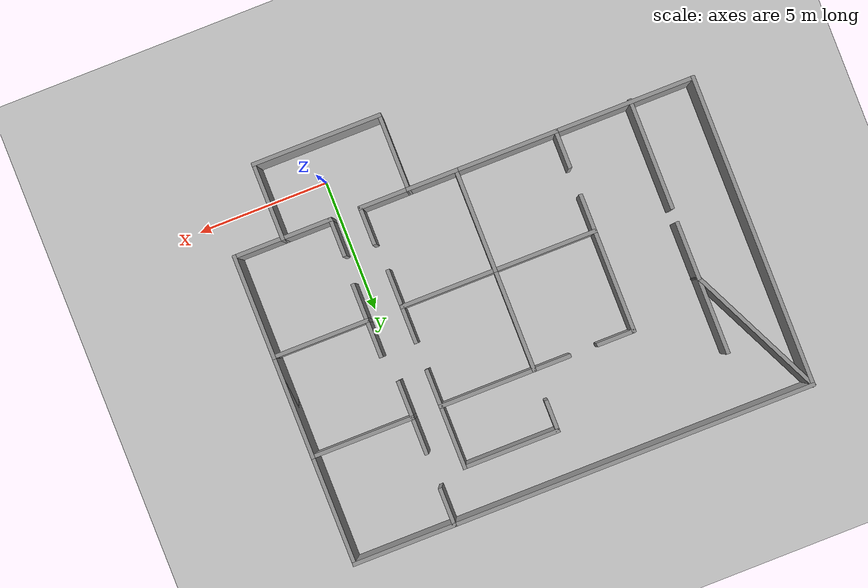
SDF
<sdf version="1.7">
 <world name="default">
  <light name="sun" type="directional">
   <pose>0 0 10 0 -0 0</pose>
   <diffuse>0.8 0.8 0.8 1</diffuse>
   <specular>0.2 0.2 0.2 1</specular>
   <attenuation>
    <range>1000</range>
    <constant>0.9</constant>
    <linear>0.01</linear>
    <quadratic>0.001</quadratic>
   </attenuation>
   <direction>-0.5 0.1 -0.9</direction>
   <spot><inner_angle>0</inner_angle><outer_angle>0</outer_angle><falloff>0</falloff></spot>
  </light>
  <model name="ground_plane">
   <static>1</static>
   <link name="link">
    <collision name="collision">
     <geometry><plane><normal>0 0 1</normal><size>100 100</size></plane></geometry>
     <surface>
      <contact><collide_bitmask>65535</collide_bitmask></contact>
      <friction><ode><mu>100</mu><mu2>50</mu2></ode></friction>
     </surface>
    </collision>
    <visual name="visual">
     <cast_shadows>0</cast_shadows>
     <geometry><plane><normal>0 0 1</normal><size>100 100</size></plane></geometry>
     <material>
      <script><uri>file://media/materials/scripts/gazebo.material</uri><name>Gazebo/Grey</name></script>
     </material>
    </visual>
   </link>
  </model>
  <gravity>0 0 -9.8</gravity>
  <magnetic_field>6e-06 2.3e-05 -4.2e-05</magnetic_field>
  <atmosphere type="adiabatic"/>
  <physics type="ode">
   <max_step_size>0.001</max_step_size>
   <real_time_factor>1</real_time_factor>
   <real_time_update_rate>1000</real_time_update_rate>
  </physics>
  <scene><ambient>0.4 0.4 0.4 1</ambient><background>0.7 0.7 0.7 1</background><shadows>1</shadows></scene>
  <spherical_coordinates>
   <surface_model>EARTH_WGS84</surface_model>
   <latitude_deg>0</latitude_deg>
   <longitude_deg>0</longitude_deg>
   <elevation>0</elevation>
   <heading_deg>0</heading_deg>
  </spherical_coordinates>
  <model name="Building_1">
   <pose>-4.93764 5.97121 0 0 -0 0</pose>
   <link name="Wall_0">
    <collision name="Wall_0_Collision">
     <geometry><box><size>5 0.15 2.5</size></box></geometry>
     <pose>0 0 1.25 0 -0 0</pose>
    </collision>
    <visual name="Wall_0_Visual">
     <pose>0 0 1.25 0 -0 0</pose>
     <geometry><box><size>5 0.15 2.5</size></box></geometry>
     <material>
      <script><uri>file://media/materials/scripts/gazebo.material</uri><name>Gazebo/Grey</name></script>
      <ambient>1 1 1 1</ambient>
     </material>
     <meta><layer>0</layer></meta>
    </visual>
    <pose>4.58754 -7.36254 0 0 -0 0</pose>
   </link>
   <link name="Wall_1">
    <collision name="Wall_1_Collision">
     <geometry><box><size>3 0.15 2.5</size></box></geometry>
     <pose>0 0 1.25 0 -0 0</pose>
    </collision>
    <visual name="Wall_1_Visual">
     <pose>0 0 1.25 0 -0 0</pose>
     <geometry><box><size>3 0.15 2.5</size></box></geometry>
     <material>
      <script><uri>file://media/materials/scripts/gazebo.material</uri><name>Gazebo/Grey</name></script>
      <ambient>1 1 1 1</ambient>
     </material>
     <meta><layer>0</layer></meta>
    </visual>
    <pose>7.01254 -5.93754 0 0 -0 1.5708</pose>
   </link>
   <link name="Wall_10">
    <collision name="Wall_10_Collision">
     <geometry><box><size>4 0.15 2.5</size></box></geometry>
     <pose>0 0 1.25 0 -0 0</pose>
    </collision>
    <visual name="Wall_10_Visual">
     <pose>0 0 1.25 0 -0 0</pose>
     <geometry><box><size>4 0.15 2.5</size></box></geometry>
     <material>
      <script><uri>file://media/materials/scripts/gazebo.material</uri><name>Gazebo/Grey</name></script>
      <ambient>1 1 1 1</ambient>
     </material>
     <meta><layer>0</layer></meta>
    </visual>
    <pose>6.93754 7.33746 0 0 -0 3.14159</pose>
   </link>
   <link name="Wall_11">
    <collision name="Wall_11_Collision">
     <geometry><box><size>1.5 0.15 2.5</size></box></geometry>
     <pose>0 0 1.25 0 -0 0</pose>
    </collision>
    <visual name="Wall_11_Visual">
     <pose>0 0 1.25 0 -0 0</pose>
     <geometry><box><size>1.5 0.15 2.5</size></box></geometry>
     <material>
      <script><uri>file://media/materials/scripts/gazebo.material</uri><name>Gazebo/Grey</name></script>
      <ambient>1 1 1 1</ambient>
     </material>
     <meta><layer>0</layer></meta>
    </visual>
    <pose>5.01254 6.66246 0 0 -0 -1.5708</pose>
   </link>
   <link name="Wall_14">
    <collision name="Wall_14_Collision">
     <geometry><box><size>1.5 0.15 2.5</size></box></geometry>
     <pose>0 0 1.25 0 -0 0</pose>
    </collision>
    <visual name="Wall_14_Visual">
     <pose>0 0 1.25 0 -0 0</pose>
     <geometry><box><size>1.5 0.15 2.5</size></box></geometry>
     <material>
      <script><uri>file://media/materials/scripts/gazebo.material</uri><name>Gazebo/Grey</name></script>
      <ambient>1 1 1 1</ambient>
     </material>
     <meta><layer>0</layer></meta>
    </visual>
    <pose>5.16254 -3.83754 0 0 -0 1.5708</pose>
   </link>
   <link name="Wall_16">
    <collision name="Wall_16_Collision">
     <geometry><box><size>4.02645 0.15 2.5</size></box></geometry>
     <pose>0 0 1.25 0 -0 0</pose>
    </collision>
    <visual name="Wall_16_Visual">
     <pose>0 0 1.25 0 -0 0</pose>
     <geometry><box><size>4.02645 0.15 2.5</size></box></geometry>
     <material>
      <script><uri>file://media/materials/scripts/gazebo.material</uri><name>Gazebo/Grey</name></script>
      <ambient>1 1 1 1</ambient>
     </material>
     <meta><layer>0</layer></meta>
    </visual>
    <pose>8.86254 -2.57431 0 0 -0 1.5708</pose>
   </link>
   <link name="Wall_17">
    <collision name="Wall_17_Collision">
     <geometry><box><size>3.75 0.15 2.5</size></box></geometry>
     <pose>0 0 1.25 0 -0 0</pose>
    </collision>
    <visual name="Wall_17_Visual">
     <pose>0 0 1.25 0 -0 0</pose>
     <geometry><box><size>3.75 0.15 2.5</size></box></geometry>
     <material>
      <script><uri>file://media/materials/scripts/gazebo.material</uri><name>Gazebo/Grey</name></script>
      <ambient>1 1 1 1</ambient>
     </material>
     <meta><layer>0</layer></meta>
    </visual>
    <pose>7.06254 -0.649313 0 0 -0 3.14159</pose>
   </link>
   <link name="Wall_2">
    <collision name="Wall_2_Collision">
     <geometry><box><size>2 0.15 2.5</size></box></geometry>
     <pose>0 0 1.25 0 -0 0</pose>
    </collision>
    <visual name="Wall_2_Visual">
     <pose>0 0 1.25 0 -0 0</pose>
     <geometry><box><size>2 0.15 2.5</size></box></geometry>
     <material>
      <script><uri>file://media/materials/scripts/gazebo.material</uri><name>Gazebo/Grey</name></script>
      <ambient>1 1 1 1</ambient>
     </material>
     <meta><layer>0</layer></meta>
    </visual>
    <pose>6.08754 -4.51254 0 0 -0 3.14159</pose>
   </link>
   <link name="Wall_20">
    <collision name="Wall_20_Collision">
     <geometry><box><size>1.5 0.15 2.5</size></box></geometry>
     <pose>0 0 1.25 0 -0 0</pose>
    </collision>
    <visual name="Wall_20_Visual">
     <pose>0 0 1.25 0 -0 0</pose>
     <geometry><box><size>1.5 0.15 2.5</size></box></geometry>
     <material>
      <script><uri>file://media/materials/scripts/gazebo.material</uri><name>Gazebo/Grey</name></script>
      <ambient>1 1 1 1</ambient>
     </material>
     <meta><layer>0</layer></meta>
    </visual>
    <pose>5.26254 -1.32431 0 0 -0 -1.5708</pose>
   </link>
   <link name="Wall_22">
    <collision name="Wall_22_Collision">
     <geometry><box><size>1.5 0.15 2.5</size></box></geometry>
     <pose>0 0 1.25 0 -0 0</pose>
    </collision>
    <visual name="Wall_22_Visual">
     <pose>0 0 1.25 0 -0 0</pose>
     <geometry><box><size>1.5 0.15 2.5</size></box></geometry>
     <material>
      <script><uri>file://media/materials/scripts/gazebo.material</uri><name>Gazebo/Grey</name></script>
      <ambient>1 1 1 1</ambient>
     </material>
     <meta><layer>0</layer></meta>
    </visual>
    <pose>5.26254 0.025687 0 0 -0 1.5708</pose>
   </link>
   <link name="Wall_24">
    <collision name="Wall_24_Collision">
     <geometry><box><size>4 0.15 2.5</size></box></geometry>
     <pose>0 0 1.25 0 -0 0</pose>
    </collision>
    <visual name="Wall_24_Visual">
     <pose>0 0 1.25 0 -0 0</pose>
     <geometry><box><size>4 0.15 2.5</size></box></geometry>
     <material>
      <script><uri>file://media/materials/scripts/gazebo.material</uri><name>Gazebo/Grey</name></script>
      <ambient>1 1 1 1</ambient>
     </material>
     <meta><layer>0</layer></meta>
    </visual>
    <pose>8.86254 1.27569 0 0 -0 1.5708</pose>
   </link>
   <link name="Wall_25">
    <collision name="Wall_25_Collision">
     <geometry><box><size>4 0.15 2.5</size></box></geometry>
     <pose>0 0 1.25 0 -0 0</pose>
    </collision>
    <visual name="Wall_25_Visual">
     <pose>0 0 1.25 0 -0 0</pose>
     <geometry><box><size>4 0.15 2.5</size></box></geometry>
     <material>
      <script><uri>file://media/materials/scripts/gazebo.material</uri><name>Gazebo/Grey</name></script>
      <ambient>1 1 1 1</ambient>
     </material>
     <meta><layer>0</layer></meta>
    </visual>
    <pose>6.93754 3.20069 0 0 -0 3.14159</pose>
   </link>
   <link name="Wall_26">
    <collision name="Wall_26_Collision">
     <geometry><box><size>1.5 0.15 2.5</size></box></geometry>
     <pose>0 0 1.25 0 -0 0</pose>
    </collision>
    <visual name="Wall_26_Visual">
     <pose>0 0 1.25 0 -0 0</pose>
     <geometry><box><size>1.5 0.15 2.5</size></box></geometry>
     <material>
      <script><uri>file://media/materials/scripts/gazebo.material</uri><name>Gazebo/Grey</name></script>
      <ambient>1 1 1 1</ambient>
     </material>
     <meta><layer>0</layer></meta>
    </visual>
    <pose>5.01254 3.87569 0 0 -0 1.5708</pose>
   </link>
   <link name="Wall_28">
    <collision name="Wall_28_Collision">
     <geometry><box><size>1.5 0.15 2.5</size></box></geometry>
     <pose>0 0 1.25 0 -0 0</pose>
    </collision>
    <visual name="Wall_28_Visual">
     <pose>0 0 1.25 0 -0 0</pose>
     <geometry><box><size>1.5 0.15 2.5</size></box></geometry>
     <material>
      <script><uri>file://media/materials/scripts/gazebo.material</uri><name>Gazebo/Grey</name></script>
      <ambient>1 1 1 1</ambient>
     </material>
     <meta><layer>0</layer></meta>
    </visual>
    <pose>5.01254 2.52569 0 0 -0 -1.5708</pose>
   </link>
   <link name="Wall_30">
    <collision name="Wall_30_Collision">
     <geometry><box><size>2 0.15 2.5</size></box></geometry>
     <pose>0 0 1.25 0 -0 0</pose>
    </collision>
    <visual name="Wall_30_Visual">
     <pose>0 0 1.25 0 -0 0</pose>
     <geometry><box><size>2 0.15 2.5</size></box></geometry>
     <material>
      <script><uri>file://media/materials/scripts/gazebo.material</uri><name>Gazebo/Grey</name></script>
      <ambient>1 1 1 1</ambient>
     </material>
     <meta><layer>0</layer></meta>
    </visual>
    <pose>1.23754 -4.51254 0 0 -0 3.14159</pose>
   </link>
   <link name="Wall_32">
    <collision name="Wall_32_Collision">
     <geometry><box><size>1.5 0.15 2.5</size></box></geometry>
     <pose>0 0 1.25 0 -0 0</pose>
    </collision>
    <visual name="Wall_32_Visual">
     <pose>0 0 1.25 0 -0 0</pose>
     <geometry><box><size>1.5 0.15 2.5</size></box></geometry>
     <material>
      <script><uri>file://media/materials/scripts/gazebo.material</uri><name>Gazebo/Grey</name></script>
      <ambient>1 1 1 1</ambient>
     </material>
     <meta><layer>0</layer></meta>
    </visual>
    <pose>4.01254 -3.83754 0 0 -0 1.5708</pose>
   </link>
   <link name="Wall_34">
    <collision name="Wall_34_Collision">
     <geometry><box><size>4 0.15 2.5</size></box></geometry>
     <pose>0 0 1.25 0 -0 0</pose>
    </collision>
    <visual name="Wall_34_Visual">
     <pose>0 0 1.25 0 -0 0</pose>
     <geometry><box><size>4 0.15 2.5</size></box></geometry>
     <material>
      <script><uri>file://media/materials/scripts/gazebo.material</uri><name>Gazebo/Grey</name></script>
      <ambient>1 1 1 1</ambient>
     </material>
     <meta><layer>0</layer></meta>
    </visual>
    <pose>0.312538 -2.58754 0 0 -0 1.5708</pose>
   </link>
   <link name="Wall_35">
    <collision name="Wall_35_Collision">
     <geometry><box><size>3.75 0.15 2.5</size></box></geometry>
     <pose>0 0 1.25 0 -0 0</pose>
    </collision>
    <visual name="Wall_35_Visual">
     <pose>0 0 1.25 0 -0 0</pose>
     <geometry><box><size>3.75 0.15 2.5</size></box></geometry>
     <material>
      <script><uri>file://media/materials/scripts/gazebo.material</uri><name>Gazebo/Grey</name></script>
      <ambient>1 1 1 1</ambient>
     </material>
     <meta><layer>0</layer></meta>
    </visual>
    <pose>2.11254 -0.662539 0 0 -0 0</pose>
   </link>
   <link name="Wall_36">
    <collision name="Wall_36_Collision">
     <geometry><box><size>1.5 0.15 2.5</size></box></geometry>
     <pose>0 0 1.25 0 -0 0</pose>
    </collision>
    <visual name="Wall_36_Visual">
     <pose>0 0 1.25 0 -0 0</pose>
     <geometry><box><size>1.5 0.15 2.5</size></box></geometry>
     <material>
      <script><uri>file://media/materials/scripts/gazebo.material</uri><name>Gazebo/Grey</name></script>
      <ambient>1 1 1 1</ambient>
     </material>
     <meta><layer>0</layer></meta>
    </visual>
    <pose>3.91254 -1.33754 0 0 -0 -1.5708</pose>
   </link>
   <link name="Wall_38">
    <collision name="Wall_38_Collision">
     <geometry><box><size>4 0.15 2.5</size></box></geometry>
     <pose>0 0 1.25 0 -0 0</pose>
    </collision>
    <visual name="Wall_38_Visual">
     <pose>0 0 1.25 0 -0 0</pose>
     <geometry><box><size>4 0.15 2.5</size></box></geometry>
     <material>
      <script><uri>file://media/materials/scripts/gazebo.material</uri><name>Gazebo/Grey</name></script>
      <ambient>1 1 1 1</ambient>
     </material>
     <meta><layer>0</layer></meta>
    </visual>
    <pose>0.312538 1.26246 0 0 -0 1.5708</pose>
   </link>
   <link name="Wall_39">
    <collision name="Wall_39_Collision">
     <geometry><box><size>3.75 0.15 2.5</size></box></geometry>
     <pose>0 0 1.25 0 -0 0</pose>
    </collision>
    <visual name="Wall_39_Visual">
     <pose>0 0 1.25 0 -0 0</pose>
     <geometry><box><size>3.75 0.15 2.5</size></box></geometry>
     <material>
      <script><uri>file://media/materials/scripts/gazebo.material</uri><name>Gazebo/Grey</name></script>
      <ambient>1 1 1 1</ambient>
     </material>
     <meta><layer>0</layer></meta>
    </visual>
    <pose>2.11254 3.18746 0 0 -0 0</pose>
   </link>
   <link name="Wall_4">
    <collision name="Wall_4_Collision">
     <geometry><box><size>3 0.15 2.5</size></box></geometry>
     <pose>0 0 1.25 0 -0 0</pose>
    </collision>
    <visual name="Wall_4_Visual">
     <pose>0 0 1.25 0 -0 0</pose>
     <geometry><box><size>3 0.15 2.5</size></box></geometry>
     <material>
      <script><uri>file://media/materials/scripts/gazebo.material</uri><name>Gazebo/Grey</name></script>
      <ambient>1 1 1 1</ambient>
     </material>
     <meta><layer>0</layer></meta>
    </visual>
    <pose>2.16254 -5.93754 0 0 -0 1.5708</pose>
   </link>
   <link name="Wall_40">
    <collision name="Wall_40_Collision">
     <geometry><box><size>1.5 0.15 2.5</size></box></geometry>
     <pose>0 0 1.25 0 -0 0</pose>
    </collision>
    <visual name="Wall_40_Visual">
     <pose>0 0 1.25 0 -0 0</pose>
     <geometry><box><size>1.5 0.15 2.5</size></box></geometry>
     <material>
      <script><uri>file://media/materials/scripts/gazebo.material</uri><name>Gazebo/Grey</name></script>
      <ambient>1 1 1 1</ambient>
     </material>
     <meta><layer>0</layer></meta>
    </visual>
    <pose>3.91254 2.51246 0 0 -0 -1.5708</pose>
   </link>
   <link name="Wall_42">
    <collision name="Wall_42_Collision">
     <geometry><box><size>1.5 0.15 2.5</size></box></geometry>
     <pose>0 0 1.25 0 -0 0</pose>
    </collision>
    <visual name="Wall_42_Visual">
     <pose>0 0 1.25 0 -0 0</pose>
     <geometry><box><size>1.5 0.15 2.5</size></box></geometry>
     <material>
      <script><uri>file://media/materials/scripts/gazebo.material</uri><name>Gazebo/Grey</name></script>
      <ambient>1 1 1 1</ambient>
     </material>
     <meta><layer>0</layer></meta>
    </visual>
    <pose>3.91254 0.012462 0 0 -0 1.5708</pose>
   </link>
   <link name="Wall_45">
    <collision name="Wall_45_Collision">
     <geometry><box><size>2.5 0.15 2.5</size></box></geometry>
     <pose>0 0 1.25 0 -0 0</pose>
    </collision>
    <visual name="Wall_45_Visual">
     <pose>0 0 1.25 0 -0 0</pose>
     <geometry><box><size>2.5 0.15 2.5</size></box></geometry>
     <material>
      <script><uri>file://media/materials/scripts/gazebo.material</uri><name>Gazebo/Grey</name></script>
      <ambient>1 1 1 1</ambient>
     </material>
     <meta><layer>0</layer></meta>
    </visual>
    <pose>3.91254 4.36246 0 0 -0 1.5708</pose>
   </link>
   <link name="Wall_46">
    <collision name="Wall_46_Collision">
     <geometry><box><size>3.75 0.15 2.5</size></box></geometry>
     <pose>0 0 1.25 0 -0 0</pose>
    </collision>
    <visual name="Wall_46_Visual">
     <pose>0 0 1.25 0 -0 0</pose>
     <geometry><box><size>3.75 0.15 2.5</size></box></geometry>
     <material>
      <script><uri>file://media/materials/scripts/gazebo.material</uri><name>Gazebo/Grey</name></script>
      <ambient>1 1 1 1</ambient>
     </material>
     <meta><layer>0</layer></meta>
    </visual>
    <pose>2.11254 5.53746 0 0 -0 3.14159</pose>
   </link>
   <link name="Wall_47">
    <collision name="Wall_47_Collision">
     <geometry><box><size>1.25 0.15 2.5</size></box></geometry>
     <pose>0 0 1.25 0 -0 0</pose>
    </collision>
    <visual name="Wall_47_Visual">
     <pose>0 0 1.25 0 -0 0</pose>
     <geometry><box><size>1.25 0.15 2.5</size></box></geometry>
     <material>
      <script><uri>file://media/materials/scripts/gazebo.material</uri><name>Gazebo/Grey</name></script>
      <ambient>1 1 1 1</ambient>
     </material>
     <meta><layer>0</layer></meta>
    </visual>
    <pose>0.312538 4.98746 0 0 -0 -1.5708</pose>
   </link>
   <link name="Wall_49">
    <collision name="Wall_49_Collision">
     <geometry><box><size>4 0.15 2.5</size></box></geometry>
     <pose>0 0 1.25 0 -0 0</pose>
    </collision>
    <visual name="Wall_49_Visual">
     <pose>0 0 1.25 0 -0 0</pose>
     <geometry><box><size>4 0.15 2.5</size></box></geometry>
     <material>
      <script><uri>file://media/materials/scripts/gazebo.material</uri><name>Gazebo/Grey</name></script>
      <ambient>1 1 1 1</ambient>
     </material>
     <meta><layer>0</layer></meta>
    </visual>
    <pose>-1.61246 -0.662539 0 0 -0 3.14159</pose>
   </link>
   <link name="Wall_5">
    <collision name="Wall_5_Collision">
     <geometry><box><size>2 0.15 2.5</size></box></geometry>
     <pose>0 0 1.25 0 -0 0</pose>
    </collision>
    <visual name="Wall_5_Visual">
     <pose>0 0 1.25 0 -0 0</pose>
     <geometry><box><size>2 0.15 2.5</size></box></geometry>
     <material>
      <script><uri>file://media/materials/scripts/gazebo.material</uri><name>Gazebo/Grey</name></script>
      <ambient>1 1 1 1</ambient>
     </material>
     <meta><layer>0</layer></meta>
    </visual>
    <pose>3.08754 -4.51254 0 0 -0 0</pose>
   </link>
   <link name="Wall_51">
    <collision name="Wall_51_Collision">
     <geometry><box><size>4 0.15 2.5</size></box></geometry>
     <pose>0 0 1.25 0 -0 0</pose>
    </collision>
    <visual name="Wall_51_Visual">
     <pose>0 0 1.25 0 -0 0</pose>
     <geometry><box><size>4 0.15 2.5</size></box></geometry>
     <material>
      <script><uri>file://media/materials/scripts/gazebo.material</uri><name>Gazebo/Grey</name></script>
      <ambient>1 1 1 1</ambient>
     </material>
     <meta><layer>0</layer></meta>
    </visual>
    <pose>-1.61246 -4.51254 0 0 -0 3.14159</pose>
   </link>
   <link name="Wall_52">
    <collision name="Wall_52_Collision">
     <geometry><box><size>1.5 0.15 2.5</size></box></geometry>
     <pose>0 0 1.25 0 -0 0</pose>
    </collision>
    <visual name="Wall_52_Visual">
     <pose>0 0 1.25 0 -0 0</pose>
     <geometry><box><size>1.5 0.15 2.5</size></box></geometry>
     <material>
      <script><uri>file://media/materials/scripts/gazebo.material</uri><name>Gazebo/Grey</name></script>
      <ambient>1 1 1 1</ambient>
     </material>
     <meta><layer>0</layer></meta>
    </visual>
    <pose>-3.53746 -3.83754 0 0 -0 1.5708</pose>
   </link>
   <link name="Wall_54">
    <collision name="Wall_54_Collision">
     <geometry><box><size>4 0.15 2.5</size></box></geometry>
     <pose>0 0 1.25 0 -0 0</pose>
    </collision>
    <visual name="Wall_54_Visual">
     <pose>0 0 1.25 0 -0 0</pose>
     <geometry><box><size>4 0.15 2.5</size></box></geometry>
     <material>
      <script><uri>file://media/materials/scripts/gazebo.material</uri><name>Gazebo/Grey</name></script>
      <ambient>1 1 1 1</ambient>
     </material>
     <meta><layer>0</layer></meta>
    </visual>
    <pose>-3.53746 1.26246 0 0 -0 1.5708</pose>
   </link>
   <link name="Wall_56">
    <collision name="Wall_56_Collision">
     <geometry><box><size>1.5 0.15 2.5</size></box></geometry>
     <pose>0 0 1.25 0 -0 0</pose>
    </collision>
    <visual name="Wall_56_Visual">
     <pose>0 0 1.25 0 -0 0</pose>
     <geometry><box><size>1.5 0.15 2.5</size></box></geometry>
     <material>
      <script><uri>file://media/materials/scripts/gazebo.material</uri><name>Gazebo/Grey</name></script>
      <ambient>1 1 1 1</ambient>
     </material>
     <meta><layer>0</layer></meta>
    </visual>
    <pose>-3.53746 -1.33754 0 0 -0 -1.5708</pose>
   </link>
   <link name="Wall_58">
    <collision name="Wall_58_Collision">
     <geometry><box><size>1.5 0.15 2.5</size></box></geometry>
     <pose>0 0 1.25 0 -0 0</pose>
    </collision>
    <visual name="Wall_58_Visual">
     <pose>0 0 1.25 0 -0 0</pose>
     <geometry><box><size>1.5 0.15 2.5</size></box></geometry>
     <material>
      <script><uri>file://media/materials/scripts/gazebo.material</uri><name>Gazebo/Grey</name></script>
      <ambient>1 1 1 1</ambient>
     </material>
     <meta><layer>0</layer></meta>
    </visual>
    <pose>-0.362462 3.18746 0 0 -0 3.14159</pose>
   </link>
   <link name="Wall_60">
    <collision name="Wall_60_Collision">
     <geometry><box><size>1.5 0.15 2.5</size></box></geometry>
     <pose>0 0 1.25 0 -0 0</pose>
    </collision>
    <visual name="Wall_60_Visual">
     <pose>0 0 1.25 0 -0 0</pose>
     <geometry><box><size>1.5 0.15 2.5</size></box></geometry>
     <material>
      <script><uri>file://media/materials/scripts/gazebo.material</uri><name>Gazebo/Grey</name></script>
      <ambient>1 1 1 1</ambient>
     </material>
     <meta><layer>0</layer></meta>
    </visual>
    <pose>-2.86246 3.18746 0 0 -0 0</pose>
   </link>
   <link name="Wall_62">
    <collision name="Wall_62_Collision">
     <geometry><box><size>14 0.15 2.5</size></box></geometry>
     <pose>0 0 1.25 0 -0 0</pose>
    </collision>
    <visual name="Wall_62_Visual">
     <pose>0 0 1.25 0 -0 0</pose>
     <geometry><box><size>14 0.15 2.5</size></box></geometry>
     <material>
      <script><uri>file://media/materials/scripts/gazebo.material</uri><name>Gazebo/Grey</name></script>
      <ambient>1 1 1 1</ambient>
     </material>
     <meta><layer>0</layer></meta>
    </visual>
    <pose>-1.91246 7.33746 0 0 -0 3.14159</pose>
   </link>
   <link name="Wall_63">
    <collision name="Wall_63_Collision">
     <geometry><box><size>12 0.15 2.5</size></box></geometry>
     <pose>0 0 1.25 0 -0 0</pose>
    </collision>
    <visual name="Wall_63_Visual">
     <pose>0 0 1.25 0 -0 0</pose>
     <geometry><box><size>12 0.15 2.5</size></box></geometry>
     <material>
      <script><uri>file://media/materials/scripts/gazebo.material</uri><name>Gazebo/Grey</name></script>
      <ambient>1 1 1 1</ambient>
     </material>
     <meta><layer>0</layer></meta>
    </visual>
    <pose>-8.83746 1.41246 0 0 -0 -1.5708</pose>
   </link>
   <link name="Wall_64">
    <collision name="Wall_64_Collision">
     <geometry><box><size>5.45 0.15 2.5</size></box></geometry>
     <pose>0 0 1.25 0 -0 0</pose>
    </collision>
    <visual name="Wall_64_Visual">
     <pose>0 0 1.25 0 -0 0</pose>
     <geometry><box><size>5.45 0.15 2.5</size></box></geometry>
     <material>
      <script><uri>file://media/materials/scripts/gazebo.material</uri><name>Gazebo/Grey</name></script>
      <ambient>1 1 1 1</ambient>
     </material>
     <meta><layer>0</layer></meta>
    </visual>
    <pose>-6.18746 -4.51254 0 0 -0 0</pose>
   </link>
   <link name="Wall_66">
    <collision name="Wall_66_Collision">
     <geometry><box><size>4.25 0.15 2.5</size></box></geometry>
     <pose>0 0 1.25 0 -0 0</pose>
    </collision>
    <visual name="Wall_66_Visual">
     <pose>0 0 1.25 0 -0 0</pose>
     <geometry><box><size>4.25 0.15 2.5</size></box></geometry>
     <material>
      <script><uri>file://media/materials/scripts/gazebo.material</uri><name>Gazebo/Grey</name></script>
      <ambient>1 1 1 1</ambient>
     </material>
     <meta><layer>0</layer></meta>
    </visual>
    <pose>-6.42984 -2.50201 0 0 -0 1.5708</pose>
   </link>
   <link name="Wall_68">
    <collision name="Wall_68_Collision">
     <geometry><box><size>2.25 0.15 2.5</size></box></geometry>
     <pose>0 0 1.25 0 -0 0</pose>
    </collision>
    <visual name="Wall_68_Visual">
     <pose>0 0 1.25 0 -0 0</pose>
     <geometry><box><size>2.25 0.15 2.5</size></box></geometry>
     <material>
      <script><uri>file://media/materials/scripts/gazebo.material</uri><name>Gazebo/Grey</name></script>
      <ambient>1 1 1 1</ambient>
     </material>
     <meta><layer>0</layer></meta>
    </visual>
    <pose>-6.40339 1.21931 0 0 -0 1.5708</pose>
   </link>
   <link name="Wall_69">
    <collision name="Wall_69_Collision">
     <geometry><box><size>5.77235 0.15 2.5</size></box></geometry>
     <pose>0 0 1.25 0 -0 0</pose>
    </collision>
    <visual name="Wall_69_Visual">
     <pose>0 0 1.25 0 -0 0</pose>
     <geometry><box><size>5.77235 0.15 2.5</size></box></geometry>
     <material>
      <script><uri>file://media/materials/scripts/gazebo.material</uri><name>Gazebo/Grey</name></script>
      <ambient>1 1 1 1</ambient>
     </material>
     <meta><layer>0</layer></meta>
    </visual>
    <pose>-7.62043 4.80339 0 0 -0 2.01853</pose>
   </link>
   <link name="Wall_7">
    <collision name="Wall_7_Collision">
     <geometry><box><size>2 0.15 2.5</size></box></geometry>
     <pose>0 0 1.25 0 -0 0</pose>
    </collision>
    <visual name="Wall_7_Visual">
     <pose>0 0 1.25 0 -0 0</pose>
     <geometry><box><size>2 0.15 2.5</size></box></geometry>
     <material>
      <script><uri>file://media/materials/scripts/gazebo.material</uri><name>Gazebo/Grey</name></script>
      <ambient>1 1 1 1</ambient>
     </material>
     <meta><layer>0</layer></meta>
    </visual>
    <pose>7.93754 -4.51254 0 0 -0 0</pose>
   </link>
   <link name="Wall_71">
    <collision name="Wall_71_Collision">
     <geometry><box><size>3 0.15 2.5</size></box></geometry>
     <pose>0 0 1.25 0 -0 0</pose>
    </collision>
    <visual name="Wall_71_Visual">
     <pose>0 0 1.25 0 -0 0</pose>
     <geometry><box><size>3 0.15 2.5</size></box></geometry>
     <material>
      <script><uri>file://media/materials/scripts/gazebo.material</uri><name>Gazebo/Grey</name></script>
      <ambient>1 1 1 1</ambient>
     </material>
     <meta><layer>0</layer></meta>
    </visual>
    <pose>-6.40339 3.69431 0 0 -0 1.5708</pose>
   </link>
   <link name="Wall_9">
    <collision name="Wall_9_Collision">
     <geometry><box><size>12 0.15 2.5</size></box></geometry>
     <pose>0 0 1.25 0 -0 0</pose>
    </collision>
    <visual name="Wall_9_Visual">
     <pose>0 0 1.25 0 -0 0</pose>
     <geometry><box><size>12 0.15 2.5</size></box></geometry>
     <material>
      <script><uri>file://media/materials/scripts/gazebo.material</uri><name>Gazebo/Grey</name></script>
      <ambient>1 1 1 1</ambient>
     </material>
     <meta><layer>0</layer></meta>
    </visual>
    <pose>8.86254 1.41246 0 0 -0 1.5708</pose>
   </link>
   <static>1</static>
  </model>
 </world>
</sdf>
